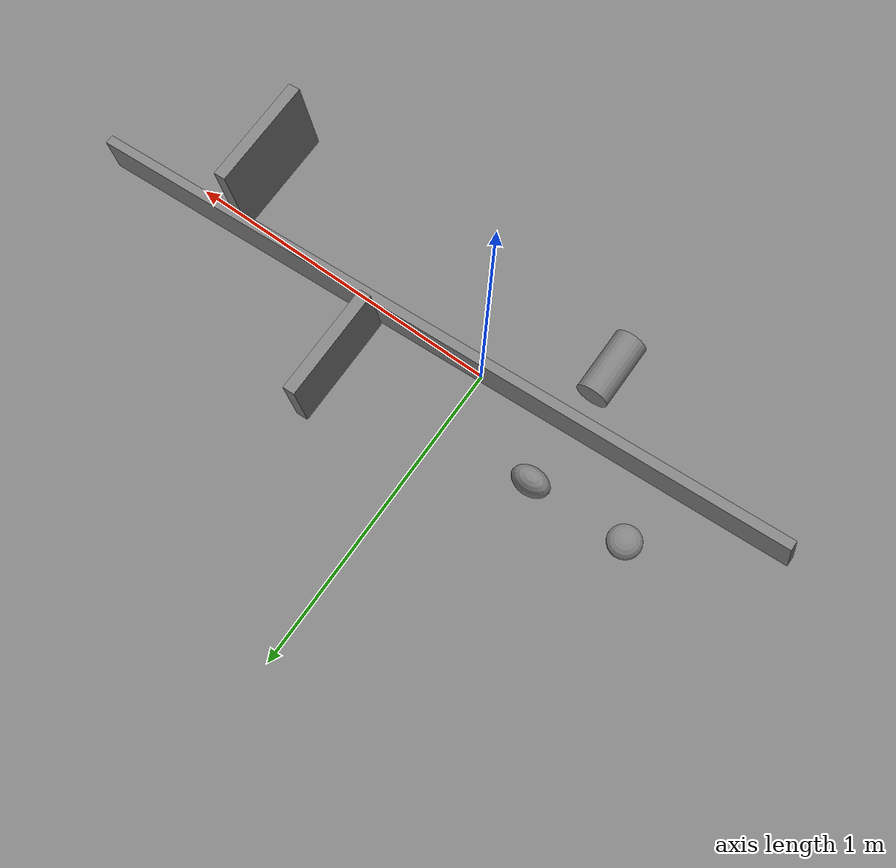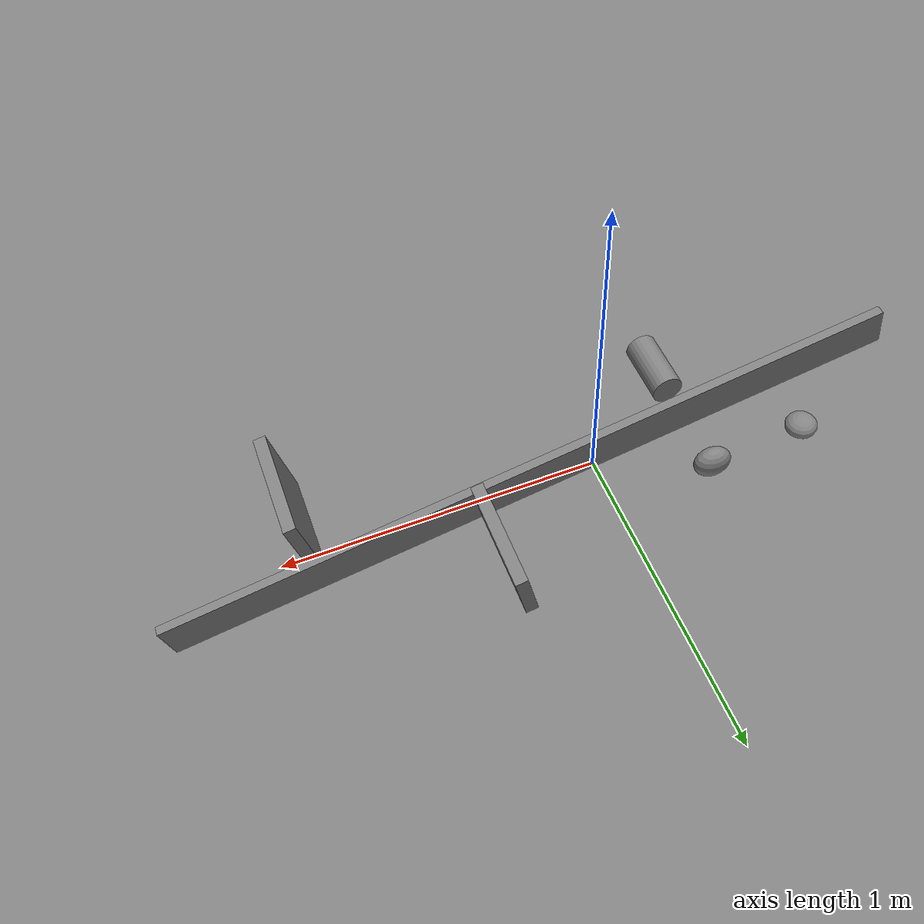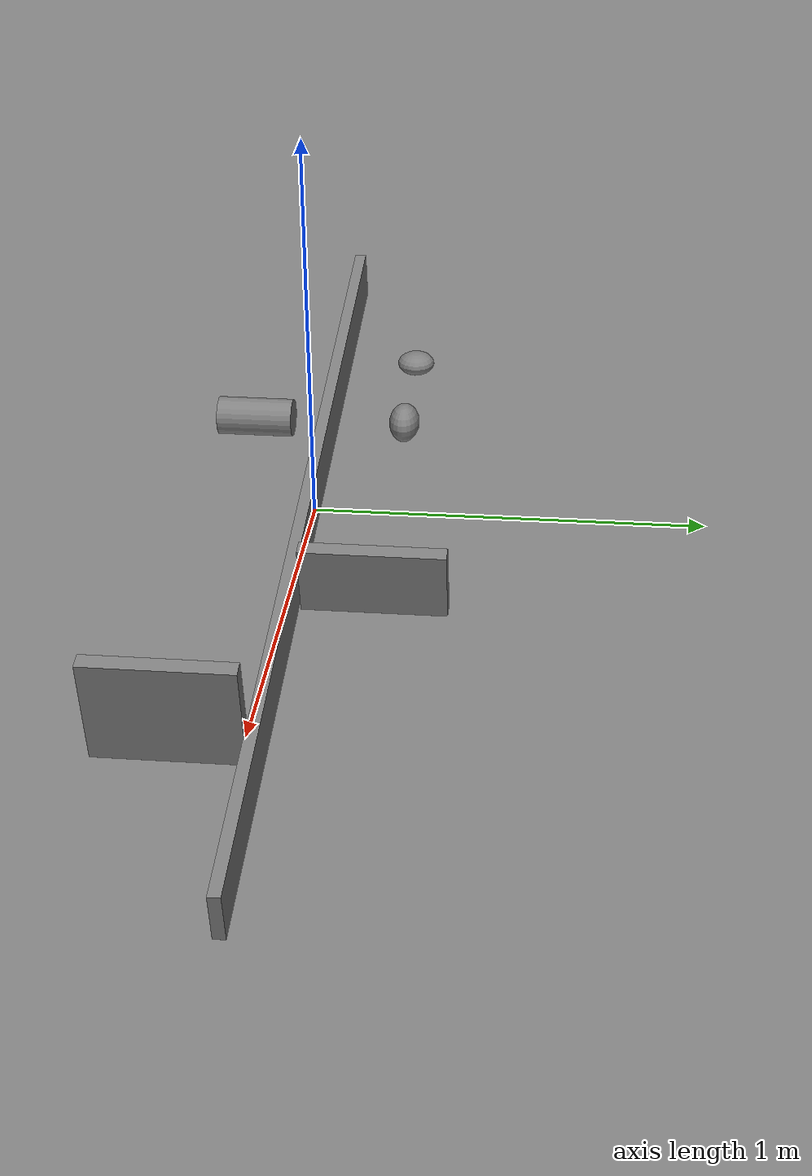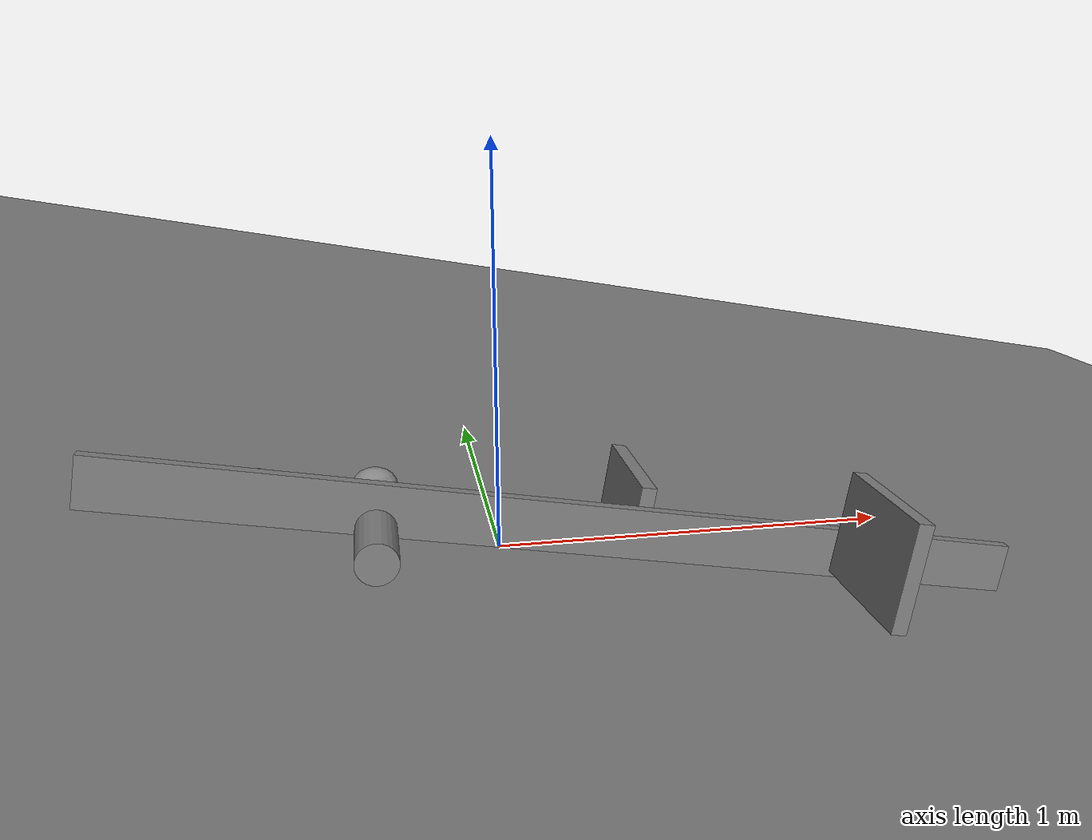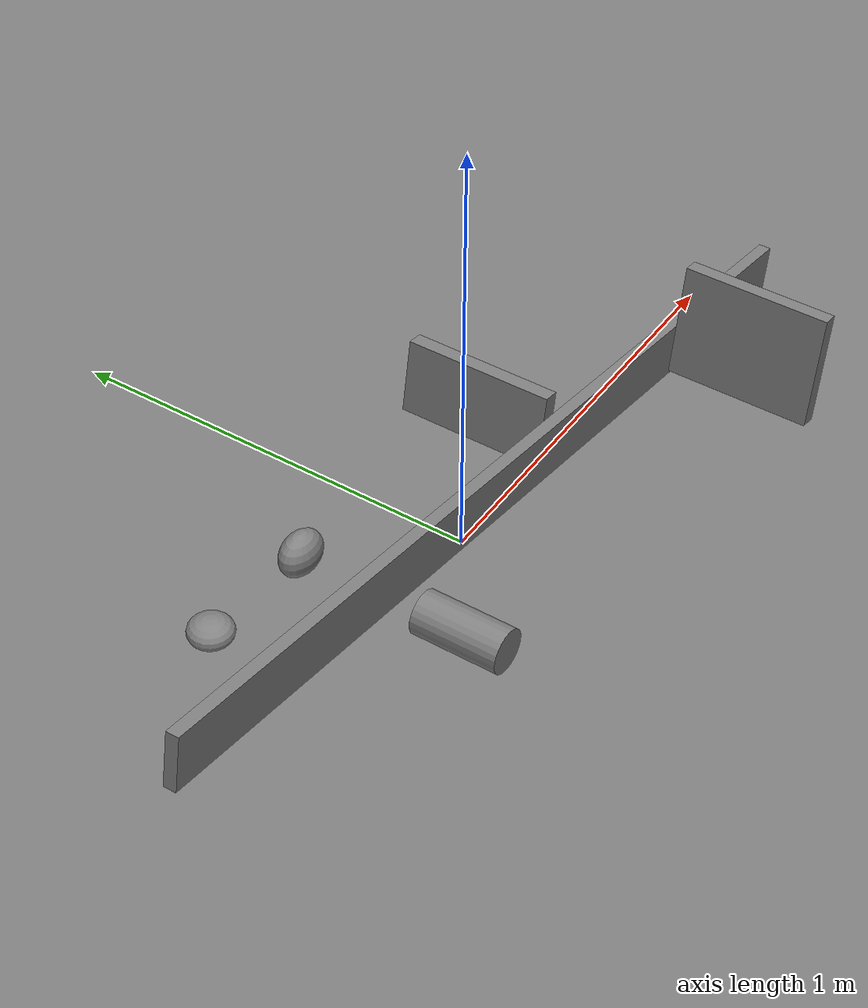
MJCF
<mujoco>
  <option timestep="0.002" gravity="0 0 -9.81" iterations="100" tolerance="1e-5"/>
  <!-- Tilted 10 degrees about Y: pieces travel toward +x. -->
  <worldbody>
    <geom name="table" type="plane" size="5 5 0.1" quat="0.99619 0 0.08716 0"
          friction="0.05" contype="1" conaffinity="6"/>
    <!-- Lane divider (visual): pieces verifiably never touch it (see
         lane-clearance checks), so it carries no contact pairs. -->
    <body name="divider" pos="0.2 0 -0.02" quat="0.99619 0 0.08716 0">
      <geom name="ridge" type="box" size="1.2 0.015 0.12"
            contype="8" conaffinity="0"/>
    </body>
    <!-- Lane A (y = -0.2): cylindrical roller, axis across the slope, high
         sliding friction so it rolls without slipping. -->
    <body name="roller1" pos="-0.3 -0.2 0.108">
      <freejoint name="roller1_free"/>
      <geom name="roll1" type="cylinder" size="0.05 0.1" quat="0.7071 0.7071 0 0"
            friction="0.8" contype="2" conaffinity="17"/>
    </body>
    <!-- Lane B (y = +0.2): nonuniform ellipsoids, low sliding friction so
         they slide independently (no catch-up pinch; see guide). -->
    <body name="tumbler1" pos="-0.3 0.2 0.108">
      <freejoint name="tumbler1_free"/>
      <geom name="tumb1" type="ellipsoid" size="0.06 0.04 0.05" friction="0.08"
            contype="4" conaffinity="37"/>
    </body>
    <body name="tumbler2" pos="-0.6 0.2 0.141">
      <freejoint name="tumbler2_free"/>
      <geom name="tumb2" type="ellipsoid" size="0.05 0.05 0.03" friction="0.13"
            contype="4" conaffinity="37"/>
    </body>
    <!-- Catch walls (one per lane, too tall to climb). The roller
         out-travels the tumblers into the far wall. -->
    <body name="bin_far" pos="0.92 -0.2 0.0" quat="0.99619 0 0.08716 0">
      <geom name="bin_far_w" type="box" size="0.02 0.18 0.14" solref="0.006 1"
            contype="16" conaffinity="2"/>
    </body>
    <body name="bin_near" pos="0.37 0.2 0.0" quat="0.99619 0 0.08716 0">
      <geom name="bin_near_w" type="box" size="0.02 0.18 0.12" solref="0.006 1"
            contype="32" conaffinity="4"/>
    </body>
  </worldbody>
</mujoco>
